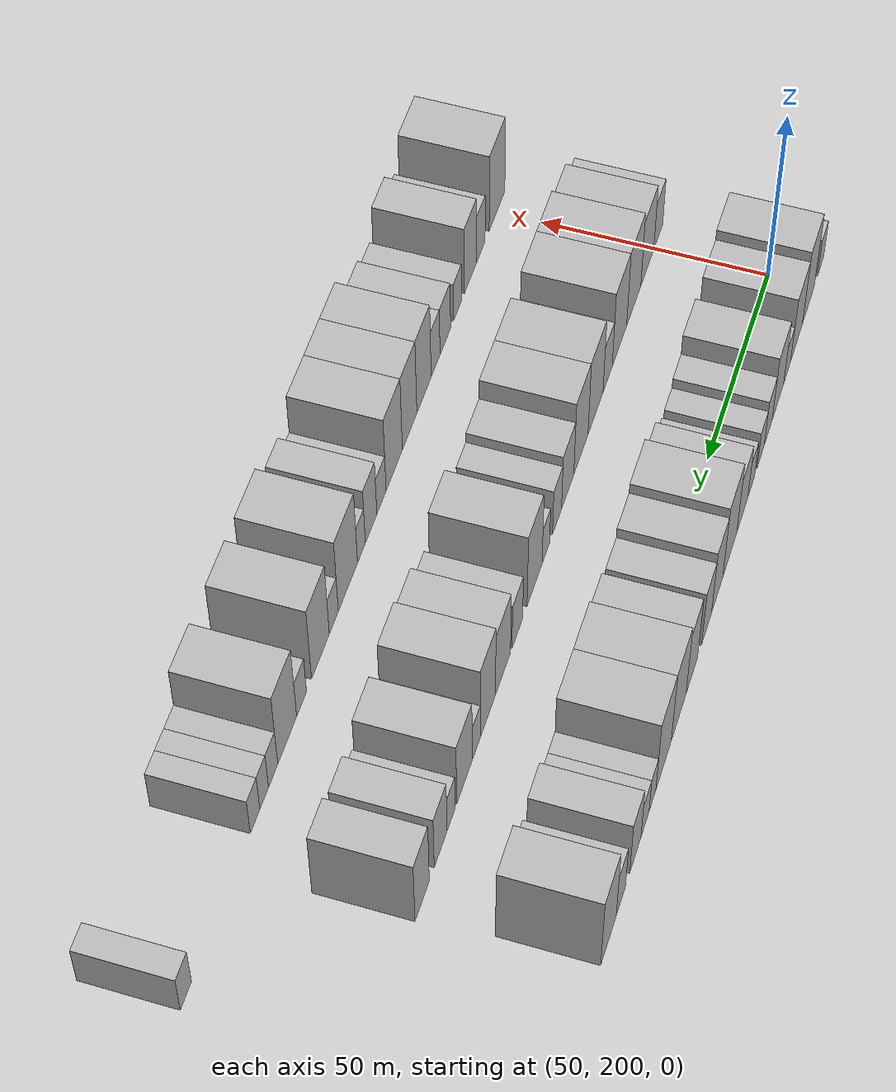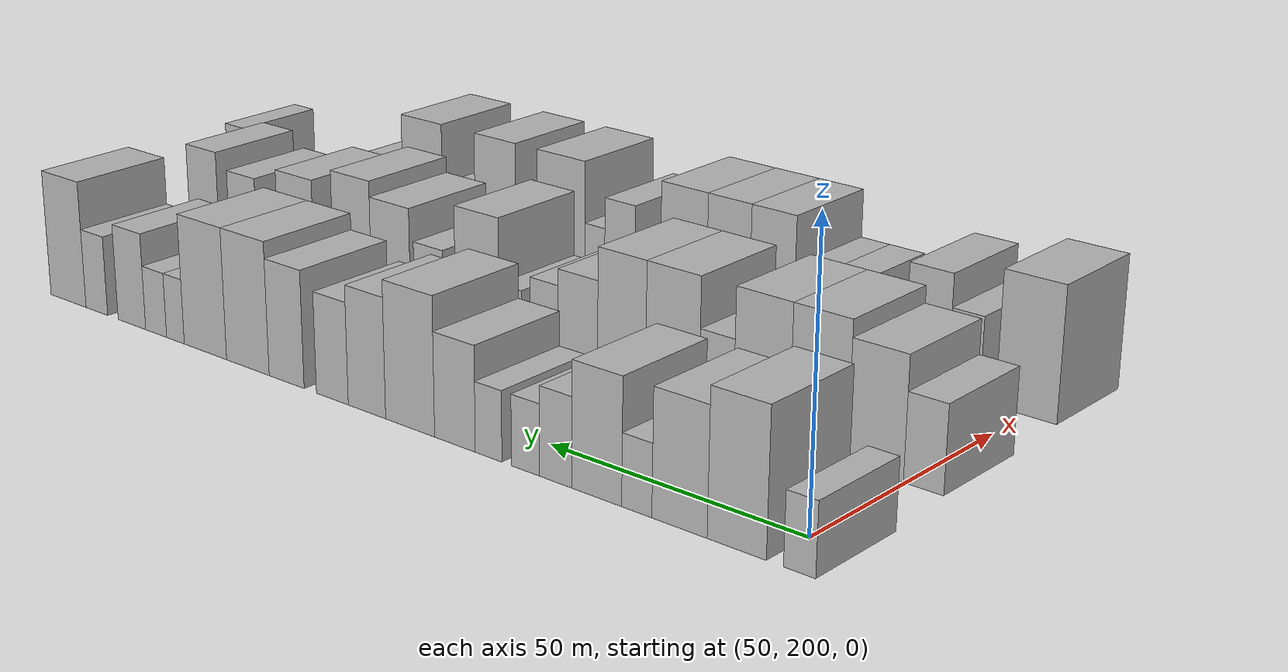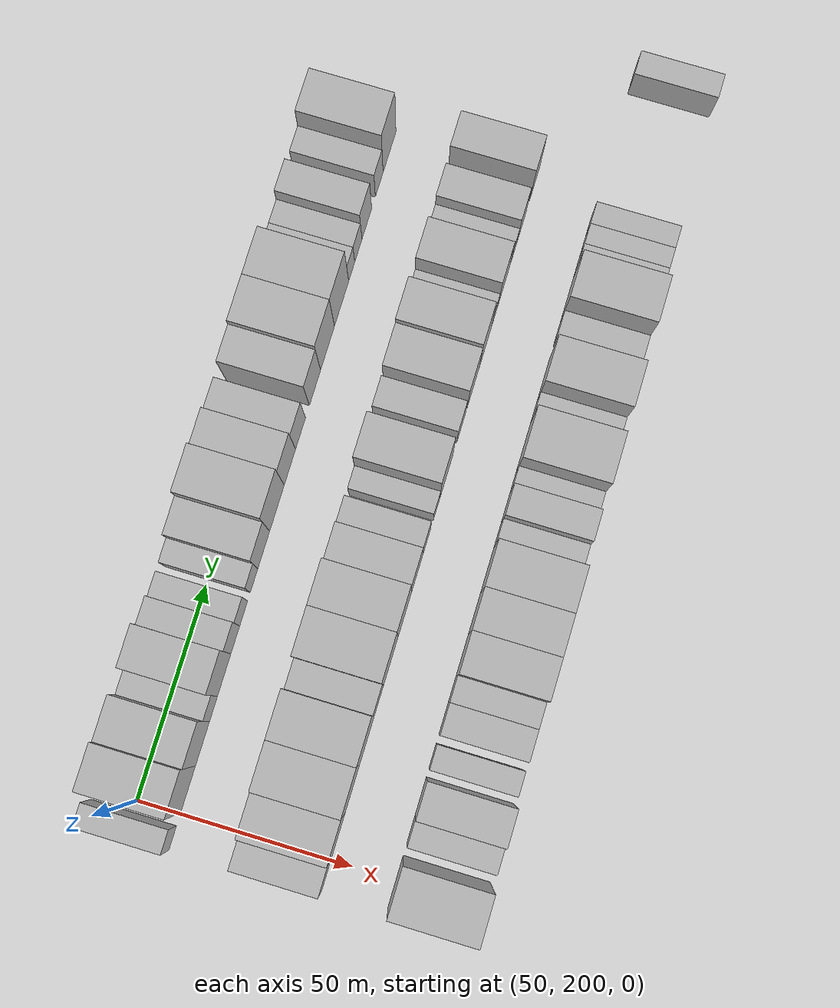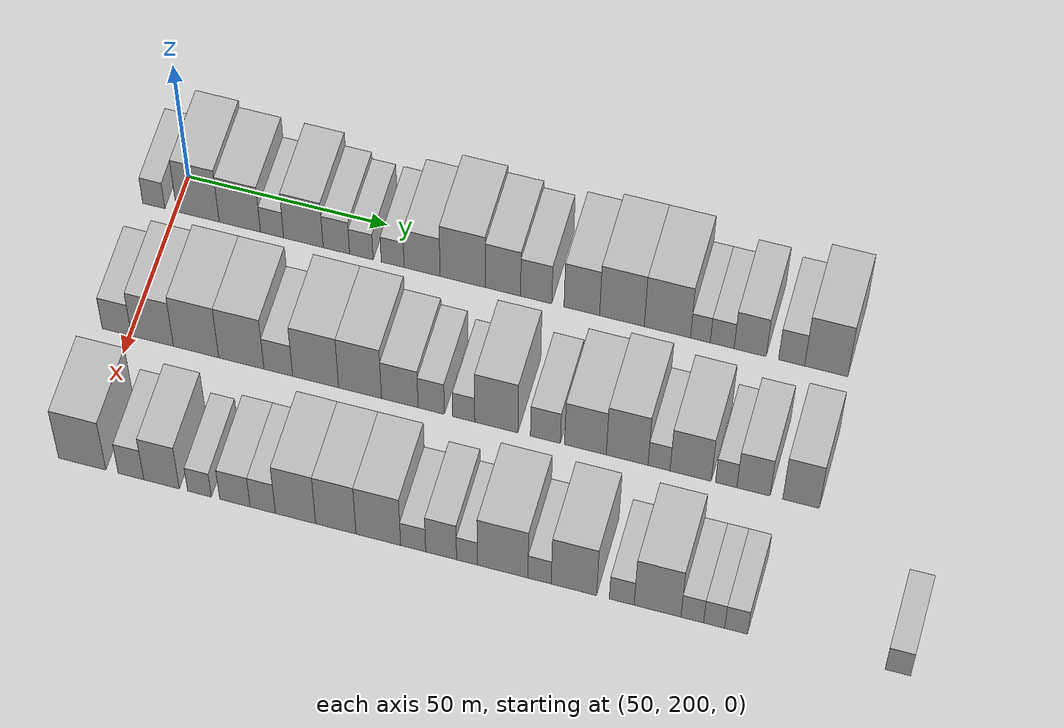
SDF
<sdf version="1.6">
 <world name="default">
  <model name="building_64">
   <static>1</static>
   <pose>50.0000 194.5093 0 0.000000 0.000000 0.000000</pose>
   <link name="link">
    <pose>0 0 6.00 0 0 0</pose>
    <collision name="collision"><geometry><box><size>20.0000 5.5681 12.0000</size></box></geometry></collision>
    <visual name="visual">
     <cast_shadows>0</cast_shadows>
     <geometry><box><size>20.0000 5.5681 12.0000</size></box></geometry>
     <material>
      <script>
       <uri>model://HANNAS_wall/materials/scripts</uri>
       <uri>model://HANNAS_wall/materials/textures</uri>
       <name>vrc/HANNAS_wall</name>
      </script>
     </material>
    </visual>
   </link>
  </model>
  <model name="building_65">
   <static>1</static>
   <pose>50.0000 205.6154 0 0.000000 0.000000 0.000000</pose>
   <link name="link">
    <pose>0 0 12.00 0 0 0</pose>
    <collision name="collision"><geometry><box><size>20.0000 10.6441 24.0000</size></box></geometry></collision>
    <visual name="visual">
     <cast_shadows>0</cast_shadows>
     <geometry><box><size>20.0000 10.6441 24.0000</size></box></geometry>
     <material>
      <script>
       <uri>model://HANNAS_wall/materials/scripts</uri>
       <uri>model://HANNAS_wall/materials/textures</uri>
       <name>vrc/HANNAS_wall</name>
      </script>
     </material>
    </visual>
   </link>
  </model>
  <model name="building_66">
   <static>1</static>
   <pose>50.0000 216.1090 0 0.000000 0.000000 0.000000</pose>
   <link name="link">
    <pose>0 0 10.50 0 0 0</pose>
    <collision name="collision"><geometry><box><size>20.0000 10.3431 21.0000</size></box></geometry></collision>
    <visual name="visual">
     <cast_shadows>0</cast_shadows>
     <geometry><box><size>20.0000 10.3431 21.0000</size></box></geometry>
     <material>
      <script>
       <uri>model://HANNAS_wall/materials/scripts</uri>
       <uri>model://HANNAS_wall/materials/textures</uri>
       <name>vrc/HANNAS_wall</name>
      </script>
     </material>
    </visual>
   </link>
  </model>
  <model name="building_67">
   <static>1</static>
   <pose>50.0000 224.1829 0 0.000000 0.000000 0.000000</pose>
   <link name="link">
    <pose>0 0 6.00 0 0 0</pose>
    <collision name="collision"><geometry><box><size>20.0000 5.8047 12.0000</size></box></geometry></collision>
    <visual name="visual">
     <cast_shadows>0</cast_shadows>
     <geometry><box><size>20.0000 5.8047 12.0000</size></box></geometry>
     <material>
      <script>
       <uri>model://HANNAS_wall/materials/scripts</uri>
       <uri>model://HANNAS_wall/materials/textures</uri>
       <name>vrc/HANNAS_wall</name>
      </script>
     </material>
    </visual>
   </link>
  </model>
  <model name="building_68">
   <static>1</static>
   <pose>50.0000 232.0032 0 0.000000 0.000000 0.000000</pose>
   <link name="link">
    <pose>0 0 10.50 0 0 0</pose>
    <collision name="collision"><geometry><box><size>20.0000 9.8358 21.0000</size></box></geometry></collision>
    <visual name="visual">
     <cast_shadows>0</cast_shadows>
     <geometry><box><size>20.0000 9.8358 21.0000</size></box></geometry>
     <material>
      <script>
       <uri>model://HANNAS_wall/materials/scripts</uri>
       <uri>model://HANNAS_wall/materials/textures</uri>
       <name>vrc/HANNAS_wall</name>
      </script>
     </material>
    </visual>
   </link>
  </model>
  <model name="building_69">
   <static>1</static>
   <pose>50.0000 240.2073 0 0.000000 0.000000 0.000000</pose>
   <link name="link">
    <pose>0 0 7.50 0 0 0</pose>
    <collision name="collision"><geometry><box><size>20.0000 6.5724 15.0000</size></box></geometry></collision>
    <visual name="visual">
     <cast_shadows>0</cast_shadows>
     <geometry><box><size>20.0000 6.5724 15.0000</size></box></geometry>
     <material>
      <script>
       <uri>model://HANNAS_wall/materials/scripts</uri>
       <uri>model://HANNAS_wall/materials/textures</uri>
       <name>vrc/HANNAS_wall</name>
      </script>
     </material>
    </visual>
   </link>
  </model>
  <model name="building_70">
   <static>1</static>
   <pose>50.0000 246.4229 0 0.000000 0.000000 0.000000</pose>
   <link name="link">
    <pose>0 0 6.00 0 0 0</pose>
    <collision name="collision"><geometry><box><size>20.0000 5.8589 12.0000</size></box></geometry></collision>
    <visual name="visual">
     <cast_shadows>0</cast_shadows>
     <geometry><box><size>20.0000 5.8589 12.0000</size></box></geometry>
     <material>
      <script>
       <uri>model://HANNAS_wall/materials/scripts</uri>
       <uri>model://HANNAS_wall/materials/textures</uri>
       <name>vrc/HANNAS_wall</name>
      </script>
     </material>
    </visual>
   </link>
  </model>
  <model name="building_71">
   <static>1</static>
   <pose>50.0000 254.1927 0 0.000000 0.000000 0.000000</pose>
   <link name="link">
    <pose>0 0 6.00 0 0 0</pose>
    <collision name="collision"><geometry><box><size>20.0000 5.6807 12.0000</size></box></geometry></collision>
    <visual name="visual">
     <cast_shadows>0</cast_shadows>
     <geometry><box><size>20.0000 5.6807 12.0000</size></box></geometry>
     <material>
      <script>
       <uri>model://HANNAS_wall/materials/scripts</uri>
       <uri>model://HANNAS_wall/materials/textures</uri>
       <name>vrc/HANNAS_wall</name>
      </script>
     </material>
    </visual>
   </link>
  </model>
  <model name="building_72">
   <static>1</static>
   <pose>50.0000 261.4831 0 0.000000 0.000000 0.000000</pose>
   <link name="link">
    <pose>0 0 9.00 0 0 0</pose>
    <collision name="collision"><geometry><box><size>20.0000 8.9001 18.0000</size></box></geometry></collision>
    <visual name="visual">
     <cast_shadows>0</cast_shadows>
     <geometry><box><size>20.0000 8.9001 18.0000</size></box></geometry>
     <material>
      <script>
       <uri>model://HANNAS_wall/materials/scripts</uri>
       <uri>model://HANNAS_wall/materials/textures</uri>
       <name>vrc/HANNAS_wall</name>
      </script>
     </material>
    </visual>
   </link>
  </model>
  <model name="building_73">
   <static>1</static>
   <pose>50.0000 271.4764 0 0.000000 0.000000 0.000000</pose>
   <link name="link">
    <pose>0 0 12.00 0 0 0</pose>
    <collision name="collision"><geometry><box><size>20.0000 11.0864 24.0000</size></box></geometry></collision>
    <visual name="visual">
     <cast_shadows>0</cast_shadows>
     <geometry><box><size>20.0000 11.0864 24.0000</size></box></geometry>
     <material>
      <script>
       <uri>model://HANNAS_wall/materials/scripts</uri>
       <uri>model://HANNAS_wall/materials/textures</uri>
       <name>vrc/HANNAS_wall</name>
      </script>
     </material>
    </visual>
   </link>
  </model>
  <model name="building_74">
   <static>1</static>
   <pose>50.0000 281.3821 0 0.000000 0.000000 0.000000</pose>
   <link name="link">
    <pose>0 0 10.50 0 0 0</pose>
    <collision name="collision"><geometry><box><size>20.0000 8.7251 21.0000</size></box></geometry></collision>
    <visual name="visual">
     <cast_shadows>0</cast_shadows>
     <geometry><box><size>20.0000 8.7251 21.0000</size></box></geometry>
     <material>
      <script>
       <uri>model://HANNAS_wall/materials/scripts</uri>
       <uri>model://HANNAS_wall/materials/textures</uri>
       <name>vrc/HANNAS_wall</name>
      </script>
     </material>
    </visual>
   </link>
  </model>
  <model name="building_75">
   <static>1</static>
   <pose>50.0000 289.5670 0 0.000000 0.000000 0.000000</pose>
   <link name="link">
    <pose>0 0 9.00 0 0 0</pose>
    <collision name="collision"><geometry><box><size>20.0000 7.6448 18.0000</size></box></geometry></collision>
    <visual name="visual">
     <cast_shadows>0</cast_shadows>
     <geometry><box><size>20.0000 7.6448 18.0000</size></box></geometry>
     <material>
      <script>
       <uri>model://HANNAS_wall/materials/scripts</uri>
       <uri>model://HANNAS_wall/materials/textures</uri>
       <name>vrc/HANNAS_wall</name>
      </script>
     </material>
    </visual>
   </link>
  </model>
  <model name="building_76">
   <static>1</static>
   <pose>50.0000 300.7373 0 0.000000 0.000000 0.000000</pose>
   <link name="link">
    <pose>0 0 10.50 0 0 0</pose>
    <collision name="collision"><geometry><box><size>20.0000 8.6957 21.0000</size></box></geometry></collision>
    <visual name="visual">
     <cast_shadows>0</cast_shadows>
     <geometry><box><size>20.0000 8.6957 21.0000</size></box></geometry>
     <material>
      <script>
       <uri>model://HANNAS_wall/materials/scripts</uri>
       <uri>model://HANNAS_wall/materials/textures</uri>
       <name>vrc/HANNAS_wall</name>
      </script>
     </material>
    </visual>
   </link>
  </model>
  <model name="building_77">
   <static>1</static>
   <pose>50.0000 310.5409 0 0.000000 0.000000 0.000000</pose>
   <link name="link">
    <pose>0 0 12.00 0 0 0</pose>
    <collision name="collision"><geometry><box><size>20.0000 10.9115 24.0000</size></box></geometry></collision>
    <visual name="visual">
     <cast_shadows>0</cast_shadows>
     <geometry><box><size>20.0000 10.9115 24.0000</size></box></geometry>
     <material>
      <script>
       <uri>model://HANNAS_wall/materials/scripts</uri>
       <uri>model://HANNAS_wall/materials/textures</uri>
       <name>vrc/HANNAS_wall</name>
      </script>
     </material>
    </visual>
   </link>
  </model>
  <model name="building_78">
   <static>1</static>
   <pose>50.0000 321.6092 0 0.000000 0.000000 0.000000</pose>
   <link name="link">
    <pose>0 0 12.00 0 0 0</pose>
    <collision name="collision"><geometry><box><size>20.0000 11.2251 24.0000</size></box></geometry></collision>
    <visual name="visual">
     <cast_shadows>0</cast_shadows>
     <geometry><box><size>20.0000 11.2251 24.0000</size></box></geometry>
     <material>
      <script>
       <uri>model://HANNAS_wall/materials/scripts</uri>
       <uri>model://HANNAS_wall/materials/textures</uri>
       <name>vrc/HANNAS_wall</name>
      </script>
     </material>
    </visual>
   </link>
  </model>
  <model name="building_79">
   <static>1</static>
   <pose>50.0000 329.6249 0 0.000000 0.000000 0.000000</pose>
   <link name="link">
    <pose>0 0 6.00 0 0 0</pose>
    <collision name="collision"><geometry><box><size>20.0000 4.8063 12.0000</size></box></geometry></collision>
    <visual name="visual">
     <cast_shadows>0</cast_shadows>
     <geometry><box><size>20.0000 4.8063 12.0000</size></box></geometry>
     <material>
      <script>
       <uri>model://HANNAS_wall/materials/scripts</uri>
       <uri>model://HANNAS_wall/materials/textures</uri>
       <name>vrc/HANNAS_wall</name>
      </script>
     </material>
    </visual>
   </link>
  </model>
  <model name="building_80">
   <static>1</static>
   <pose>50.0000 334.9151 0 0.000000 0.000000 0.000000</pose>
   <link name="link">
    <pose>0 0 6.00 0 0 0</pose>
    <collision name="collision"><geometry><box><size>20.0000 5.7741 12.0000</size></box></geometry></collision>
    <visual name="visual">
     <cast_shadows>0</cast_shadows>
     <geometry><box><size>20.0000 5.7741 12.0000</size></box></geometry>
     <material>
      <script>
       <uri>model://HANNAS_wall/materials/scripts</uri>
       <uri>model://HANNAS_wall/materials/textures</uri>
       <name>vrc/HANNAS_wall</name>
      </script>
     </material>
    </visual>
   </link>
  </model>
  <model name="building_81">
   <static>1</static>
   <pose>50.0000 341.6799 0 0.000000 0.000000 0.000000</pose>
   <link name="link">
    <pose>0 0 9.00 0 0 0</pose>
    <collision name="collision"><geometry><box><size>20.0000 7.7554 18.0000</size></box></geometry></collision>
    <visual name="visual">
     <cast_shadows>0</cast_shadows>
     <geometry><box><size>20.0000 7.7554 18.0000</size></box></geometry>
     <material>
      <script>
       <uri>model://HANNAS_wall/materials/scripts</uri>
       <uri>model://HANNAS_wall/materials/textures</uri>
       <name>vrc/HANNAS_wall</name>
      </script>
     </material>
    </visual>
   </link>
  </model>
  <model name="building_82">
   <static>1</static>
   <pose>50.0000 351.6924 0 0.000000 0.000000 0.000000</pose>
   <link name="link">
    <pose>0 0 7.50 0 0 0</pose>
    <collision name="collision"><geometry><box><size>20.0000 6.2697 15.0000</size></box></geometry></collision>
    <visual name="visual">
     <cast_shadows>0</cast_shadows>
     <geometry><box><size>20.0000 6.2697 15.0000</size></box></geometry>
     <material>
      <script>
       <uri>model://HANNAS_wall/materials/scripts</uri>
       <uri>model://HANNAS_wall/materials/textures</uri>
       <name>vrc/HANNAS_wall</name>
      </script>
     </material>
    </visual>
   </link>
  </model>
  <model name="building_83">
   <static>1</static>
   <pose>50.0000 360.0272 0 0.000000 0.000000 0.000000</pose>
   <link name="link">
    <pose>0 0 12.00 0 0 0</pose>
    <collision name="collision"><geometry><box><size>20.0000 10.4000 24.0000</size></box></geometry></collision>
    <visual name="visual">
     <cast_shadows>0</cast_shadows>
     <geometry><box><size>20.0000 10.4000 24.0000</size></box></geometry>
     <material>
      <script>
       <uri>model://HANNAS_wall/materials/scripts</uri>
       <uri>model://HANNAS_wall/materials/textures</uri>
       <name>vrc/HANNAS_wall</name>
      </script>
     </material>
    </visual>
   </link>
  </model>
  <model name="building_148">
   <static>1</static>
   <pose>85.0000 196.7764 0 0.000000 0.000000 0.000000</pose>
   <link name="link">
    <pose>0 0 7.50 0 0 0</pose>
    <collision name="collision"><geometry><box><size>20.0000 7.2391 15.0000</size></box></geometry></collision>
    <visual name="visual">
     <cast_shadows>0</cast_shadows>
     <geometry><box><size>20.0000 7.2391 15.0000</size></box></geometry>
     <material>
      <script>
       <uri>model://HANNAS_wall/materials/scripts</uri>
       <uri>model://HANNAS_wall/materials/textures</uri>
       <name>vrc/HANNAS_wall</name>
      </script>
     </material>
    </visual>
   </link>
  </model>
  <model name="building_149">
   <static>1</static>
   <pose>85.0000 205.5823 0 0.000000 0.000000 0.000000</pose>
   <link name="link">
    <pose>0 0 10.50 0 0 0</pose>
    <collision name="collision"><geometry><box><size>20.0000 10.3728 21.0000</size></box></geometry></collision>
    <visual name="visual">
     <cast_shadows>0</cast_shadows>
     <geometry><box><size>20.0000 10.3728 21.0000</size></box></geometry>
     <material>
      <script>
       <uri>model://HANNAS_wall/materials/scripts</uri>
       <uri>model://HANNAS_wall/materials/textures</uri>
       <name>vrc/HANNAS_wall</name>
      </script>
     </material>
    </visual>
   </link>
  </model>
  <model name="building_150">
   <static>1</static>
   <pose>85.0000 216.3478 0 0.000000 0.000000 0.000000</pose>
   <link name="link">
    <pose>0 0 12.00 0 0 0</pose>
    <collision name="collision"><geometry><box><size>20.0000 11.1581 24.0000</size></box></geometry></collision>
    <visual name="visual">
     <cast_shadows>0</cast_shadows>
     <geometry><box><size>20.0000 11.1581 24.0000</size></box></geometry>
     <material>
      <script>
       <uri>model://HANNAS_wall/materials/scripts</uri>
       <uri>model://HANNAS_wall/materials/textures</uri>
       <name>vrc/HANNAS_wall</name>
      </script>
     </material>
    </visual>
   </link>
  </model>
  <model name="building_151">
   <static>1</static>
   <pose>85.0000 227.4856 0 0.000000 0.000000 0.000000</pose>
   <link name="link">
    <pose>0 0 12.00 0 0 0</pose>
    <collision name="collision"><geometry><box><size>20.0000 11.1177 24.0000</size></box></geometry></collision>
    <visual name="visual">
     <cast_shadows>0</cast_shadows>
     <geometry><box><size>20.0000 11.1177 24.0000</size></box></geometry>
     <material>
      <script>
       <uri>model://HANNAS_wall/materials/scripts</uri>
       <uri>model://HANNAS_wall/materials/textures</uri>
       <name>vrc/HANNAS_wall</name>
      </script>
     </material>
    </visual>
   </link>
  </model>
  <model name="building_152">
   <static>1</static>
   <pose>85.0000 236.5525 0 0.000000 0.000000 0.000000</pose>
   <link name="link">
    <pose>0 0 7.50 0 0 0</pose>
    <collision name="collision"><geometry><box><size>20.0000 7.0161 15.0000</size></box></geometry></collision>
    <visual name="visual">
     <cast_shadows>0</cast_shadows>
     <geometry><box><size>20.0000 7.0161 15.0000</size></box></geometry>
     <material>
      <script>
       <uri>model://HANNAS_wall/materials/scripts</uri>
       <uri>model://HANNAS_wall/materials/textures</uri>
       <name>vrc/HANNAS_wall</name>
      </script>
     </material>
    </visual>
   </link>
  </model>
  <model name="building_153">
   <static>1</static>
   <pose>85.0000 245.6819 0 0.000000 0.000000 0.000000</pose>
   <link name="link">
    <pose>0 0 12.00 0 0 0</pose>
    <collision name="collision"><geometry><box><size>20.0000 11.2426 24.0000</size></box></geometry></collision>
    <visual name="visual">
     <cast_shadows>0</cast_shadows>
     <geometry><box><size>20.0000 11.2426 24.0000</size></box></geometry>
     <material>
      <script>
       <uri>model://HANNAS_wall/materials/scripts</uri>
       <uri>model://HANNAS_wall/materials/textures</uri>
       <name>vrc/HANNAS_wall</name>
      </script>
     </material>
    </visual>
   </link>
  </model>
  <model name="building_154">
   <static>1</static>
   <pose>85.0000 256.5313 0 0.000000 0.000000 0.000000</pose>
   <link name="link">
    <pose>0 0 12.00 0 0 0</pose>
    <collision name="collision"><geometry><box><size>20.0000 10.4563 24.0000</size></box></geometry></collision>
    <visual name="visual">
     <cast_shadows>0</cast_shadows>
     <geometry><box><size>20.0000 10.4563 24.0000</size></box></geometry>
     <material>
      <script>
       <uri>model://HANNAS_wall/materials/scripts</uri>
       <uri>model://HANNAS_wall/materials/textures</uri>
       <name>vrc/HANNAS_wall</name>
      </script>
     </material>
    </visual>
   </link>
  </model>
  <model name="building_155">
   <static>1</static>
   <pose>85.0000 266.1989 0 0.000000 0.000000 0.000000</pose>
   <link name="link">
    <pose>0 0 9.00 0 0 0</pose>
    <collision name="collision"><geometry><box><size>20.0000 8.8788 18.0000</size></box></geometry></collision>
    <visual name="visual">
     <cast_shadows>0</cast_shadows>
     <geometry><box><size>20.0000 8.8788 18.0000</size></box></geometry>
     <material>
      <script>
       <uri>model://HANNAS_wall/materials/scripts</uri>
       <uri>model://HANNAS_wall/materials/textures</uri>
       <name>vrc/HANNAS_wall</name>
      </script>
     </material>
    </visual>
   </link>
  </model>
  <model name="building_156">
   <static>1</static>
   <pose>85.0000 273.8310 0 0.000000 0.000000 0.000000</pose>
   <link name="link">
    <pose>0 0 7.50 0 0 0</pose>
    <collision name="collision"><geometry><box><size>20.0000 6.3854 15.0000</size></box></geometry></collision>
    <visual name="visual">
     <cast_shadows>0</cast_shadows>
     <geometry><box><size>20.0000 6.3854 15.0000</size></box></geometry>
     <material>
      <script>
       <uri>model://HANNAS_wall/materials/scripts</uri>
       <uri>model://HANNAS_wall/materials/textures</uri>
       <name>vrc/HANNAS_wall</name>
      </script>
     </material>
    </visual>
   </link>
  </model>
  <model name="building_157">
   <static>1</static>
   <pose>85.0000 281.6886 0 0.000000 0.000000 0.000000</pose>
   <link name="link">
    <pose>0 0 6.00 0 0 0</pose>
    <collision name="collision"><geometry><box><size>20.0000 5.3297 12.0000</size></box></geometry></collision>
    <visual name="visual">
     <cast_shadows>0</cast_shadows>
     <geometry><box><size>20.0000 5.3297 12.0000</size></box></geometry>
     <material>
      <script>
       <uri>model://HANNAS_wall/materials/scripts</uri>
       <uri>model://HANNAS_wall/materials/textures</uri>
       <name>vrc/HANNAS_wall</name>
      </script>
     </material>
    </visual>
   </link>
  </model>
  <model name="building_158">
   <static>1</static>
   <pose>85.0000 289.5676 0 0.000000 0.000000 0.000000</pose>
   <link name="link">
    <pose>0 0 12.00 0 0 0</pose>
    <collision name="collision"><geometry><box><size>20.0000 10.4283 24.0000</size></box></geometry></collision>
    <visual name="visual">
     <cast_shadows>0</cast_shadows>
     <geometry><box><size>20.0000 10.4283 24.0000</size></box></geometry>
     <material>
      <script>
       <uri>model://HANNAS_wall/materials/scripts</uri>
       <uri>model://HANNAS_wall/materials/textures</uri>
       <name>vrc/HANNAS_wall</name>
      </script>
     </material>
    </visual>
   </link>
  </model>
  <model name="building_159">
   <static>1</static>
   <pose>85.0000 301.3899 0 0.000000 0.000000 0.000000</pose>
   <link name="link">
    <pose>0 0 7.50 0 0 0</pose>
    <collision name="collision"><geometry><box><size>20.0000 7.2164 15.0000</size></box></geometry></collision>
    <visual name="visual">
     <cast_shadows>0</cast_shadows>
     <geometry><box><size>20.0000 7.2164 15.0000</size></box></geometry>
     <material>
      <script>
       <uri>model://HANNAS_wall/materials/scripts</uri>
       <uri>model://HANNAS_wall/materials/textures</uri>
       <name>vrc/HANNAS_wall</name>
      </script>
     </material>
    </visual>
   </link>
  </model>
  <model name="building_160">
   <static>1</static>
   <pose>85.0000 310.9939 0 0.000000 0.000000 0.000000</pose>
   <link name="link">
    <pose>0 0 10.50 0 0 0</pose>
    <collision name="collision"><geometry><box><size>20.0000 9.9916 21.0000</size></box></geometry></collision>
    <visual name="visual">
     <cast_shadows>0</cast_shadows>
     <geometry><box><size>20.0000 9.9916 21.0000</size></box></geometry>
     <material>
      <script>
       <uri>model://HANNAS_wall/materials/scripts</uri>
       <uri>model://HANNAS_wall/materials/textures</uri>
       <name>vrc/HANNAS_wall</name>
      </script>
     </material>
    </visual>
   </link>
  </model>
  <model name="building_161">
   <static>1</static>
   <pose>85.0000 320.9890 0 0.000000 0.000000 0.000000</pose>
   <link name="link">
    <pose>0 0 12.00 0 0 0</pose>
    <collision name="collision"><geometry><box><size>20.0000 9.9985 24.0000</size></box></geometry></collision>
    <visual name="visual">
     <cast_shadows>0</cast_shadows>
     <geometry><box><size>20.0000 9.9985 24.0000</size></box></geometry>
     <material>
      <script>
       <uri>model://HANNAS_wall/materials/scripts</uri>
       <uri>model://HANNAS_wall/materials/textures</uri>
       <name>vrc/HANNAS_wall</name>
      </script>
     </material>
    </visual>
   </link>
  </model>
  <model name="building_162">
   <static>1</static>
   <pose>85.0000 328.6164 0 0.000000 0.000000 0.000000</pose>
   <link name="link">
    <pose>0 0 6.00 0 0 0</pose>
    <collision name="collision"><geometry><box><size>20.0000 5.2562 12.0000</size></box></geometry></collision>
    <visual name="visual">
     <cast_shadows>0</cast_shadows>
     <geometry><box><size>20.0000 5.2562 12.0000</size></box></geometry>
     <material>
      <script>
       <uri>model://HANNAS_wall/materials/scripts</uri>
       <uri>model://HANNAS_wall/materials/textures</uri>
       <name>vrc/HANNAS_wall</name>
      </script>
     </material>
    </visual>
   </link>
  </model>
  <model name="building_163">
   <static>1</static>
   <pose>85.0000 336.1527 0 0.000000 0.000000 0.000000</pose>
   <link name="link">
    <pose>0 0 10.50 0 0 0</pose>
    <collision name="collision"><geometry><box><size>20.0000 9.8165 21.0000</size></box></geometry></collision>
    <visual name="visual">
     <cast_shadows>0</cast_shadows>
     <geometry><box><size>20.0000 9.8165 21.0000</size></box></geometry>
     <material>
      <script>
       <uri>model://HANNAS_wall/materials/scripts</uri>
       <uri>model://HANNAS_wall/materials/textures</uri>
       <name>vrc/HANNAS_wall</name>
      </script>
     </material>
    </visual>
   </link>
  </model>
  <model name="building_164">
   <static>1</static>
   <pose>85.0000 344.6006 0 0.000000 0.000000 0.000000</pose>
   <link name="link">
    <pose>0 0 6.00 0 0 0</pose>
    <collision name="collision"><geometry><box><size>20.0000 5.0793 12.0000</size></box></geometry></collision>
    <visual name="visual">
     <cast_shadows>0</cast_shadows>
     <geometry><box><size>20.0000 5.0793 12.0000</size></box></geometry>
     <material>
      <script>
       <uri>model://HANNAS_wall/materials/scripts</uri>
       <uri>model://HANNAS_wall/materials/textures</uri>
       <name>vrc/HANNAS_wall</name>
      </script>
     </material>
    </visual>
   </link>
  </model>
  <model name="building_165">
   <static>1</static>
   <pose>85.0000 351.0897 0 0.000000 0.000000 0.000000</pose>
   <link name="link">
    <pose>0 0 9.00 0 0 0</pose>
    <collision name="collision"><geometry><box><size>20.0000 7.8988 18.0000</size></box></geometry></collision>
    <visual name="visual">
     <cast_shadows>0</cast_shadows>
     <geometry><box><size>20.0000 7.8988 18.0000</size></box></geometry>
     <material>
      <script>
       <uri>model://HANNAS_wall/materials/scripts</uri>
       <uri>model://HANNAS_wall/materials/textures</uri>
       <name>vrc/HANNAS_wall</name>
      </script>
     </material>
    </visual>
   </link>
  </model>
  <model name="building_166">
   <static>1</static>
   <pose>85.0000 362.3575 0 0.000000 0.000000 0.000000</pose>
   <link name="link">
    <pose>0 0 10.50 0 0 0</pose>
    <collision name="collision"><geometry><box><size>20.0000 8.6369 21.0000</size></box></geometry></collision>
    <visual name="visual">
     <cast_shadows>0</cast_shadows>
     <geometry><box><size>20.0000 8.6369 21.0000</size></box></geometry>
     <material>
      <script>
       <uri>model://HANNAS_wall/materials/scripts</uri>
       <uri>model://HANNAS_wall/materials/textures</uri>
       <name>vrc/HANNAS_wall</name>
      </script>
     </material>
    </visual>
   </link>
  </model>
  <model name="building_221">
   <static>1</static>
   <pose>120.0000 199.9327 0 0.000000 0.000000 0.000000</pose>
   <link name="link">
    <pose>0 0 12.00 0 0 0</pose>
    <collision name="collision"><geometry><box><size>20.0000 11.5051 24.0000</size></box></geometry></collision>
    <visual name="visual">
     <cast_shadows>0</cast_shadows>
     <geometry><box><size>20.0000 11.5051 24.0000</size></box></geometry>
     <material>
      <script>
       <uri>model://HANNAS_wall/materials/scripts</uri>
       <uri>model://HANNAS_wall/materials/textures</uri>
       <name>vrc/HANNAS_wall</name>
      </script>
     </material>
    </visual>
   </link>
  </model>
  <model name="building_222">
   <static>1</static>
   <pose>120.0000 211.7904 0 0.000000 0.000000 0.000000</pose>
   <link name="link">
    <pose>0 0 7.50 0 0 0</pose>
    <collision name="collision"><geometry><box><size>20.0000 6.2103 15.0000</size></box></geometry></collision>
    <visual name="visual">
     <cast_shadows>0</cast_shadows>
     <geometry><box><size>20.0000 6.2103 15.0000</size></box></geometry>
     <material>
      <script>
       <uri>model://HANNAS_wall/materials/scripts</uri>
       <uri>model://HANNAS_wall/materials/textures</uri>
       <name>vrc/HANNAS_wall</name>
      </script>
     </material>
    </visual>
   </link>
  </model>
  <model name="building_223">
   <static>1</static>
   <pose>120.0000 219.2017 0 0.000000 0.000000 0.000000</pose>
   <link name="link">
    <pose>0 0 10.50 0 0 0</pose>
    <collision name="collision"><geometry><box><size>20.0000 8.6124 21.0000</size></box></geometry></collision>
    <visual name="visual">
     <cast_shadows>0</cast_shadows>
     <geometry><box><size>20.0000 8.6124 21.0000</size></box></geometry>
     <material>
      <script>
       <uri>model://HANNAS_wall/materials/scripts</uri>
       <uri>model://HANNAS_wall/materials/textures</uri>
       <name>vrc/HANNAS_wall</name>
      </script>
     </material>
    </visual>
   </link>
  </model>
  <model name="building_224">
   <static>1</static>
   <pose>120.0000 228.3814 0 0.000000 0.000000 0.000000</pose>
   <link name="link">
    <pose>0 0 6.00 0 0 0</pose>
    <collision name="collision"><geometry><box><size>20.0000 5.7469 12.0000</size></box></geometry></collision>
    <visual name="visual">
     <cast_shadows>0</cast_shadows>
     <geometry><box><size>20.0000 5.7469 12.0000</size></box></geometry>
     <material>
      <script>
       <uri>model://HANNAS_wall/materials/scripts</uri>
       <uri>model://HANNAS_wall/materials/textures</uri>
       <name>vrc/HANNAS_wall</name>
      </script>
     </material>
    </visual>
   </link>
  </model>
  <model name="building_225">
   <static>1</static>
   <pose>120.0000 236.9203 0 0.000000 0.000000 0.000000</pose>
   <link name="link">
    <pose>0 0 7.50 0 0 0</pose>
    <collision name="collision"><geometry><box><size>20.0000 7.3310 15.0000</size></box></geometry></collision>
    <visual name="visual">
     <cast_shadows>0</cast_shadows>
     <geometry><box><size>20.0000 7.3310 15.0000</size></box></geometry>
     <material>
      <script>
       <uri>model://HANNAS_wall/materials/scripts</uri>
       <uri>model://HANNAS_wall/materials/textures</uri>
       <name>vrc/HANNAS_wall</name>
      </script>
     </material>
    </visual>
   </link>
  </model>
  <model name="building_226">
   <static>1</static>
   <pose>120.0000 243.6292 0 0.000000 0.000000 0.000000</pose>
   <link name="link">
    <pose>0 0 7.50 0 0 0</pose>
    <collision name="collision"><geometry><box><size>20.0000 6.0868 15.0000</size></box></geometry></collision>
    <visual name="visual">
     <cast_shadows>0</cast_shadows>
     <geometry><box><size>20.0000 6.0868 15.0000</size></box></geometry>
     <material>
      <script>
       <uri>model://HANNAS_wall/materials/scripts</uri>
       <uri>model://HANNAS_wall/materials/textures</uri>
       <name>vrc/HANNAS_wall</name>
      </script>
     </material>
    </visual>
   </link>
  </model>
  <model name="building_227">
   <static>1</static>
   <pose>120.0000 251.5082 0 0.000000 0.000000 0.000000</pose>
   <link name="link">
    <pose>0 0 12.00 0 0 0</pose>
    <collision name="collision"><geometry><box><size>20.0000 9.6711 24.0000</size></box></geometry></collision>
    <visual name="visual">
     <cast_shadows>0</cast_shadows>
     <geometry><box><size>20.0000 9.6711 24.0000</size></box></geometry>
     <material>
      <script>
       <uri>model://HANNAS_wall/materials/scripts</uri>
       <uri>model://HANNAS_wall/materials/textures</uri>
       <name>vrc/HANNAS_wall</name>
      </script>
     </material>
    </visual>
   </link>
  </model>
  <model name="building_228">
   <static>1</static>
   <pose>120.0000 261.1621 0 0.000000 0.000000 0.000000</pose>
   <link name="link">
    <pose>0 0 12.00 0 0 0</pose>
    <collision name="collision"><geometry><box><size>20.0000 9.6367 24.0000</size></box></geometry></collision>
    <visual name="visual">
     <cast_shadows>0</cast_shadows>
     <geometry><box><size>20.0000 9.6367 24.0000</size></box></geometry>
     <material>
      <script>
       <uri>model://HANNAS_wall/materials/scripts</uri>
       <uri>model://HANNAS_wall/materials/textures</uri>
       <name>vrc/HANNAS_wall</name>
      </script>
     </material>
    </visual>
   </link>
  </model>
  <model name="building_229">
   <static>1</static>
   <pose>120.0000 271.3050 0 0.000000 0.000000 0.000000</pose>
   <link name="link">
    <pose>0 0 12.00 0 0 0</pose>
    <collision name="collision"><geometry><box><size>20.0000 10.6489 24.0000</size></box></geometry></collision>
    <visual name="visual">
     <cast_shadows>0</cast_shadows>
     <geometry><box><size>20.0000 10.6489 24.0000</size></box></geometry>
     <material>
      <script>
       <uri>model://HANNAS_wall/materials/scripts</uri>
       <uri>model://HANNAS_wall/materials/textures</uri>
       <name>vrc/HANNAS_wall</name>
      </script>
     </material>
    </visual>
   </link>
  </model>
  <model name="building_230">
   <static>1</static>
   <pose>120.0000 279.6137 0 0.000000 0.000000 0.000000</pose>
   <link name="link">
    <pose>0 0 6.00 0 0 0</pose>
    <collision name="collision"><geometry><box><size>20.0000 5.9686 12.0000</size></box></geometry></collision>
    <visual name="visual">
     <cast_shadows>0</cast_shadows>
     <geometry><box><size>20.0000 5.9686 12.0000</size></box></geometry>
     <material>
      <script>
       <uri>model://HANNAS_wall/materials/scripts</uri>
       <uri>model://HANNAS_wall/materials/textures</uri>
       <name>vrc/HANNAS_wall</name>
      </script>
     </material>
    </visual>
   </link>
  </model>
  <model name="building_231">
   <static>1</static>
   <pose>120.0000 286.2649 0 0.000000 0.000000 0.000000</pose>
   <link name="link">
    <pose>0 0 9.00 0 0 0</pose>
    <collision name="collision"><geometry><box><size>20.0000 7.3339 18.0000</size></box></geometry></collision>
    <visual name="visual">
     <cast_shadows>0</cast_shadows>
     <geometry><box><size>20.0000 7.3339 18.0000</size></box></geometry>
     <material>
      <script>
       <uri>model://HANNAS_wall/materials/scripts</uri>
       <uri>model://HANNAS_wall/materials/textures</uri>
       <name>vrc/HANNAS_wall</name>
      </script>
     </material>
    </visual>
   </link>
  </model>
  <model name="building_232">
   <static>1</static>
   <pose>120.0000 292.3833 0 0.000000 0.000000 0.000000</pose>
   <link name="link">
    <pose>0 0 6.00 0 0 0</pose>
    <collision name="collision"><geometry><box><size>20.0000 4.9029 12.0000</size></box></geometry></collision>
    <visual name="visual">
     <cast_shadows>0</cast_shadows>
     <geometry><box><size>20.0000 4.9029 12.0000</size></box></geometry>
     <material>
      <script>
       <uri>model://HANNAS_wall/materials/scripts</uri>
       <uri>model://HANNAS_wall/materials/textures</uri>
       <name>vrc/HANNAS_wall</name>
      </script>
     </material>
    </visual>
   </link>
  </model>
  <model name="building_233">
   <static>1</static>
   <pose>120.0000 300.8085 0 0.000000 0.000000 0.000000</pose>
   <link name="link">
    <pose>0 0 12.00 0 0 0</pose>
    <collision name="collision"><geometry><box><size>20.0000 11.9475 24.0000</size></box></geometry></collision>
    <visual name="visual">
     <cast_shadows>0</cast_shadows>
     <geometry><box><size>20.0000 11.9475 24.0000</size></box></geometry>
     <material>
      <script>
       <uri>model://HANNAS_wall/materials/scripts</uri>
       <uri>model://HANNAS_wall/materials/textures</uri>
       <name>vrc/HANNAS_wall</name>
      </script>
     </material>
    </visual>
   </link>
  </model>
  <model name="building_234">
   <static>1</static>
   <pose>120.0000 309.5346 0 0.000000 0.000000 0.000000</pose>
   <link name="link">
    <pose>0 0 6.00 0 0 0</pose>
    <collision name="collision"><geometry><box><size>20.0000 5.5045 12.0000</size></box></geometry></collision>
    <visual name="visual">
     <cast_shadows>0</cast_shadows>
     <geometry><box><size>20.0000 5.5045 12.0000</size></box></geometry>
     <material>
      <script>
       <uri>model://HANNAS_wall/materials/scripts</uri>
       <uri>model://HANNAS_wall/materials/textures</uri>
       <name>vrc/HANNAS_wall</name>
      </script>
     </material>
    </visual>
   </link>
  </model>
  <model name="building_235">
   <static>1</static>
   <pose>120.0000 317.6421 0 0.000000 0.000000 0.000000</pose>
   <link name="link">
    <pose>0 0 12.00 0 0 0</pose>
    <collision name="collision"><geometry><box><size>20.0000 10.7106 24.0000</size></box></geometry></collision>
    <visual name="visual">
     <cast_shadows>0</cast_shadows>
     <geometry><box><size>20.0000 10.7106 24.0000</size></box></geometry>
     <material>
      <script>
       <uri>model://HANNAS_wall/materials/scripts</uri>
       <uri>model://HANNAS_wall/materials/textures</uri>
       <name>vrc/HANNAS_wall</name>
      </script>
     </material>
    </visual>
   </link>
  </model>
  <model name="building_236">
   <static>1</static>
   <pose>120.0000 328.8988 0 0.000000 0.000000 0.000000</pose>
   <link name="link">
    <pose>0 0 6.00 0 0 0</pose>
    <collision name="collision"><geometry><box><size>20.0000 5.8028 12.0000</size></box></geometry></collision>
    <visual name="visual">
     <cast_shadows>0</cast_shadows>
     <geometry><box><size>20.0000 5.8028 12.0000</size></box></geometry>
     <material>
      <script>
       <uri>model://HANNAS_wall/materials/scripts</uri>
       <uri>model://HANNAS_wall/materials/textures</uri>
       <name>vrc/HANNAS_wall</name>
      </script>
     </material>
    </visual>
   </link>
  </model>
  <model name="building_237">
   <static>1</static>
   <pose>120.0000 337.2868 0 0.000000 0.000000 0.000000</pose>
   <link name="link">
    <pose>0 0 12.00 0 0 0</pose>
    <collision name="collision"><geometry><box><size>20.0000 10.9732 24.0000</size></box></geometry></collision>
    <visual name="visual">
     <cast_shadows>0</cast_shadows>
     <geometry><box><size>20.0000 10.9732 24.0000</size></box></geometry>
     <material>
      <script>
       <uri>model://HANNAS_wall/materials/scripts</uri>
       <uri>model://HANNAS_wall/materials/textures</uri>
       <name>vrc/HANNAS_wall</name>
      </script>
     </material>
    </visual>
   </link>
  </model>
  <model name="building_238">
   <static>1</static>
   <pose>120.0000 345.4153 0 0.000000 0.000000 0.000000</pose>
   <link name="link">
    <pose>0 0 6.00 0 0 0</pose>
    <collision name="collision"><geometry><box><size>20.0000 5.2839 12.0000</size></box></geometry></collision>
    <visual name="visual">
     <cast_shadows>0</cast_shadows>
     <geometry><box><size>20.0000 5.2839 12.0000</size></box></geometry>
     <material>
      <script>
       <uri>model://HANNAS_wall/materials/scripts</uri>
       <uri>model://HANNAS_wall/materials/textures</uri>
       <name>vrc/HANNAS_wall</name>
      </script>
     </material>
    </visual>
   </link>
  </model>
  <model name="building_239">
   <static>1</static>
   <pose>120.0000 350.5211 0 0.000000 0.000000 0.000000</pose>
   <link name="link">
    <pose>0 0 6.00 0 0 0</pose>
    <collision name="collision"><geometry><box><size>20.0000 4.9276 12.0000</size></box></geometry></collision>
    <visual name="visual">
     <cast_shadows>0</cast_shadows>
     <geometry><box><size>20.0000 4.9276 12.0000</size></box></geometry>
     <material>
      <script>
       <uri>model://HANNAS_wall/materials/scripts</uri>
       <uri>model://HANNAS_wall/materials/textures</uri>
       <name>vrc/HANNAS_wall</name>
      </script>
     </material>
    </visual>
   </link>
  </model>
  <model name="building_240">
   <static>1</static>
   <pose>120.0000 355.6497 0 0.000000 0.000000 0.000000</pose>
   <link name="link">
    <pose>0 0 6.00 0 0 0</pose>
    <collision name="collision"><geometry><box><size>20.0000 5.3296 12.0000</size></box></geometry></collision>
    <visual name="visual">
     <cast_shadows>0</cast_shadows>
     <geometry><box><size>20.0000 5.3296 12.0000</size></box></geometry>
     <material>
      <script>
       <uri>model://HANNAS_wall/materials/scripts</uri>
       <uri>model://HANNAS_wall/materials/textures</uri>
       <name>vrc/HANNAS_wall</name>
      </script>
     </material>
    </visual>
   </link>
  </model>
  <model name="building_241">
   <static>1</static>
   <pose>120.0000 393.1172 0 0.000000 0.000000 0.000000</pose>
   <link name="link">
    <pose>0 0 6.00 0 0 0</pose>
    <collision name="collision"><geometry><box><size>20.0000 5.8684 12.0000</size></box></geometry></collision>
    <visual name="visual">
     <cast_shadows>0</cast_shadows>
     <geometry><box><size>20.0000 5.8684 12.0000</size></box></geometry>
     <material>
      <script>
       <uri>model://HANNAS_wall/materials/scripts</uri>
       <uri>model://HANNAS_wall/materials/textures</uri>
       <name>vrc/HANNAS_wall</name>
      </script>
     </material>
    </visual>
   </link>
  </model>
 </world>
</sdf>
